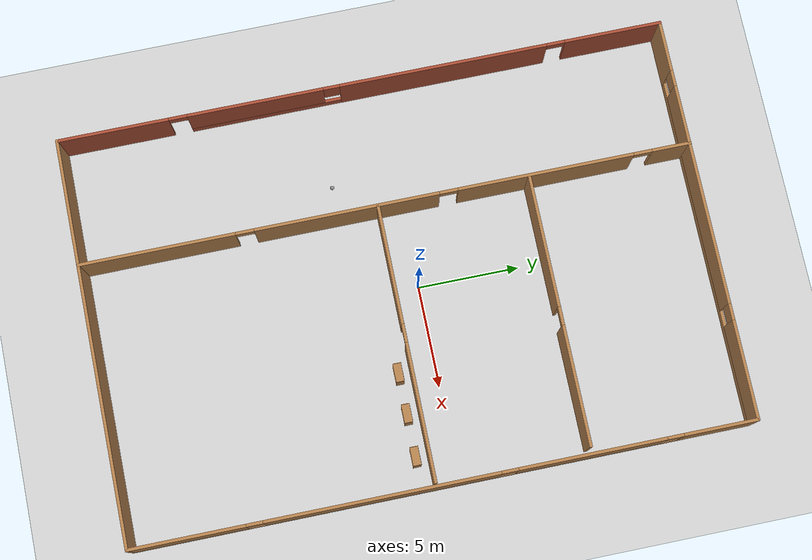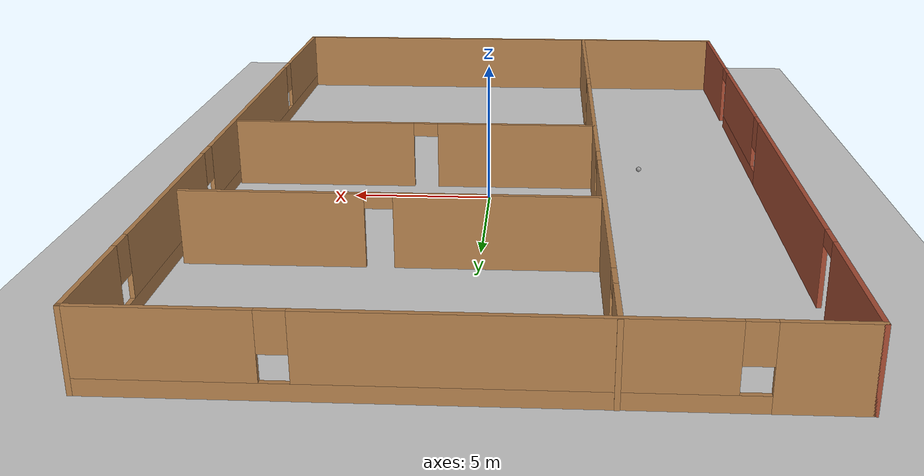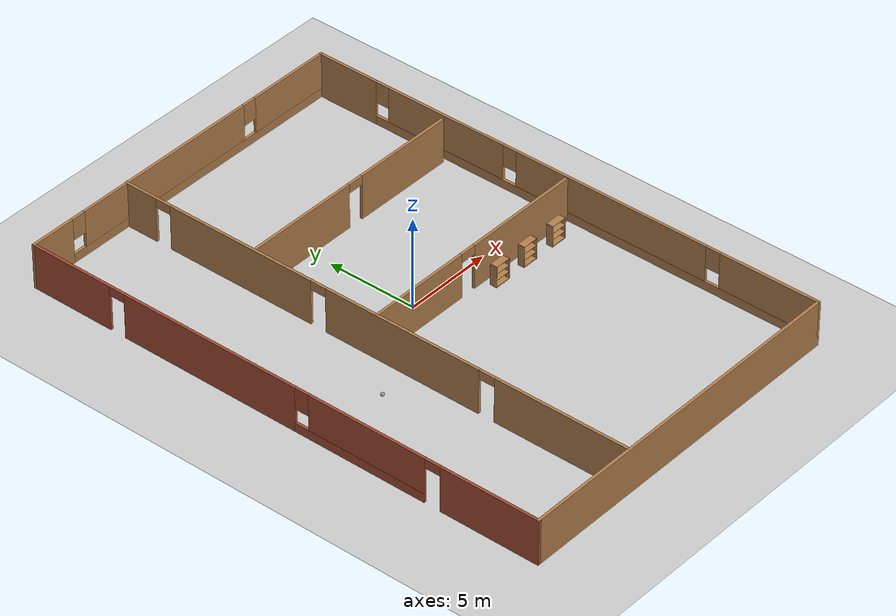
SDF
<sdf version="1.6">
 <world name="default">
  <plugin name="hello" filename="libhello.so"/>
  <light name="sun" type="directional">
   <pose>0 0 10 0 -0 0</pose>
   <diffuse>0.8 0.8 0.8 1</diffuse>
   <specular>0.2 0.2 0.2 1</specular>
   <attenuation>
    <range>1000</range>
    <constant>0.9</constant>
    <linear>0.01</linear>
    <quadratic>0.001</quadratic>
   </attenuation>
   <direction>-0.5 0.1 -0.9</direction>
  </light>
  <model name="ground_plane">
   <static>1</static>
   <link name="link">
    <collision name="collision">
     <geometry><plane><normal>0 0 1</normal><size>100 100</size></plane></geometry>
     <surface><friction><ode><mu>100</mu><mu2>50</mu2></ode></friction></surface>
    </collision>
    <visual name="visual">
     <cast_shadows>0</cast_shadows>
     <geometry><plane><normal>0 0 1</normal><size>100 100</size></plane></geometry>
     <material>
      <script><uri>file://media/materials/scripts/gazebo.material</uri><name>Gazebo/Grey</name></script>
     </material>
    </visual>
   </link>
  </model>
  <gravity>0 0 -9.8</gravity>
  <magnetic_field>6e-06 2.3e-05 -4.2e-05</magnetic_field>
  <atmosphere type="adiabatic"/>
  <physics name="default_physics" default="0" type="ode">
   <max_step_size>0.001</max_step_size>
   <real_time_factor>1</real_time_factor>
   <real_time_update_rate>1000</real_time_update_rate>
  </physics>
  <scene><ambient>0.4 0.4 0.4 1</ambient><background>0.7 0.7 0.7 1</background><shadows>1</shadows></scene>
  <spherical_coordinates>
   <surface_model>EARTH_WGS84</surface_model>
   <latitude_deg>0</latitude_deg>
   <longitude_deg>0</longitude_deg>
   <elevation>0</elevation>
   <heading_deg>0</heading_deg>
  </spherical_coordinates>
  <model name="mybuilding">
   <pose>-0.1778 -0.784294 0 0 -0 0</pose>
   <link name="Wall_10">
    <pose>-9.925 -0.008029 0 0 0 -1.5708</pose>
    <visual name="Wall_10_Visual_0">
     <pose>-12.5796 0 1.25 0 -0 0</pose>
     <geometry><box><size>4.84086 0.15 2.5</size></box></geometry>
     <material>
      <script><uri>file://media/materials/scripts/gazebo.material</uri><name>Gazebo/Bricks</name></script>
      <ambient>0 0 1 1</ambient>
     </material>
     <meta><layer>0</layer></meta>
    </visual>
    <collision name="Wall_10_Collision_0">
     <geometry><box><size>4.84086 0.15 2.5</size></box></geometry>
     <pose>-12.5796 0 1.25 0 -0 0</pose>
    </collision>
    <visual name="Wall_10_Visual_1">
     <pose>-4.10732 0 1.25 0 -0 0</pose>
     <geometry><box><size>10.3036 0.15 2.5</size></box></geometry>
     <material>
      <script><uri>file://media/materials/scripts/gazebo.material</uri><name>Gazebo/Bricks</name></script>
      <ambient>0 0 1 1</ambient>
     </material>
     <meta><layer>0</layer></meta>
    </visual>
    <collision name="Wall_10_Collision_1">
     <geometry><box><size>10.3036 0.15 2.5</size></box></geometry>
     <pose>-4.10732 0 1.25 0 -0 0</pose>
    </collision>
    <visual name="Wall_10_Visual_2">
     <pose>12.2327 0 1.25 0 -0 0</pose>
     <geometry><box><size>5.53454 0.15 2.5</size></box></geometry>
     <material>
      <script><uri>file://media/materials/scripts/gazebo.material</uri><name>Gazebo/Bricks</name></script>
      <ambient>0 0 1 1</ambient>
     </material>
     <meta><layer>0</layer></meta>
    </visual>
    <collision name="Wall_10_Collision_2">
     <geometry><box><size>5.53454 0.15 2.5</size></box></geometry>
     <pose>12.2327 0 1.25 0 -0 0</pose>
    </collision>
    <visual name="Wall_10_Visual_3">
     <pose>4.80498 0 0.25 0 -0 0</pose>
     <geometry><box><size>7.52096 0.15 0.5</size></box></geometry>
     <material>
      <script><uri>file://media/materials/scripts/gazebo.material</uri><name>Gazebo/Bricks</name></script>
      <ambient>0 0 1 1</ambient>
     </material>
     <meta><layer>0</layer></meta>
    </visual>
    <collision name="Wall_10_Collision_3">
     <geometry><box><size>7.52096 0.15 0.5</size></box></geometry>
     <pose>4.80498 0 0.25 0 -0 0</pose>
    </collision>
    <visual name="Wall_10_Visual_4">
     <pose>5.20498 0 1.5 0 -0 0</pose>
     <geometry><box><size>6.72096 0.15 2</size></box></geometry>
     <material>
      <script><uri>file://media/materials/scripts/gazebo.material</uri><name>Gazebo/Bricks</name></script>
      <ambient>0 0 1 1</ambient>
     </material>
     <meta><layer>0</layer></meta>
    </visual>
    <collision name="Wall_10_Collision_4">
     <geometry><box><size>6.72096 0.15 2</size></box></geometry>
     <pose>5.20498 0 1.5 0 -0 0</pose>
    </collision>
    <visual name="Wall_10_Visual_5">
     <pose>1.4445 0 1.9 0 -0 0</pose>
     <geometry><box><size>0.8 0.15 1.2</size></box></geometry>
     <material>
      <script><uri>file://media/materials/scripts/gazebo.material</uri><name>Gazebo/Bricks</name></script>
      <ambient>0 0 1 1</ambient>
     </material>
     <meta><layer>0</layer></meta>
    </visual>
    <collision name="Wall_10_Collision_5">
     <geometry><box><size>0.8 0.15 1.2</size></box></geometry>
     <pose>1.4445 0 1.9 0 -0 0</pose>
    </collision>
    <visual name="Wall_10_Visual_6">
     <pose>-9.70914 0 2.25 0 -0 0</pose>
     <geometry><box><size>0.9 0.15 0.5</size></box></geometry>
     <material>
      <script><uri>file://media/materials/scripts/gazebo.material</uri><name>Gazebo/Bricks</name></script>
      <ambient>0 0 1 1</ambient>
     </material>
     <meta><layer>0</layer></meta>
    </visual>
    <collision name="Wall_10_Collision_6">
     <geometry><box><size>0.9 0.15 0.5</size></box></geometry>
     <pose>-9.70914 0 2.25 0 -0 0</pose>
    </collision>
    <visual name="Wall_10_Visual_7">
     <pose>9.01545 0 2.25 0 -0 0</pose>
     <geometry><box><size>0.9 0.15 0.5</size></box></geometry>
     <material>
      <script><uri>file://media/materials/scripts/gazebo.material</uri><name>Gazebo/Bricks</name></script>
      <ambient>0 0 1 1</ambient>
     </material>
     <meta><layer>0</layer></meta>
    </visual>
    <collision name="Wall_10_Collision_7">
     <geometry><box><size>0.9 0.15 0.5</size></box></geometry>
     <pose>9.01545 0 2.25 0 -0 0</pose>
    </collision>
   </link>
   <link name="Wall_13">
    <pose>-3.70059 0.008029 0 0 0 -1.5708</pose>
    <visual name="Wall_13_Visual_0">
     <pose>-14.0243 0 1.25 0 -0 0</pose>
     <geometry><box><size>1.95137 0.15 2.5</size></box></geometry>
     <material>
      <script><uri>file://media/materials/scripts/gazebo.material</uri><name>Gazebo/Wood</name></script>
      <ambient>0 0 1 1</ambient>
     </material>
     <meta><layer>0</layer></meta>
    </visual>
    <collision name="Wall_13_Collision_0">
     <geometry><box><size>1.95137 0.15 2.5</size></box></geometry>
     <pose>-14.0243 0 1.25 0 -0 0</pose>
    </collision>
    <visual name="Wall_13_Visual_1">
     <pose>-7.82302 0 1.25 0 -0 0</pose>
     <geometry><box><size>8.65122 0.15 2.5</size></box></geometry>
     <material>
      <script><uri>file://media/materials/scripts/gazebo.material</uri><name>Gazebo/Wood</name></script>
      <ambient>0 0 1 1</ambient>
     </material>
     <meta><layer>0</layer></meta>
    </visual>
    <collision name="Wall_13_Collision_1">
     <geometry><box><size>8.65122 0.15 2.5</size></box></geometry>
     <pose>-7.82302 0 1.25 0 -0 0</pose>
    </collision>
    <visual name="Wall_13_Visual_2">
     <pose>1.92488 0 1.25 0 -0 0</pose>
     <geometry><box><size>9.04457 0.15 2.5</size></box></geometry>
     <material>
      <script><uri>file://media/materials/scripts/gazebo.material</uri><name>Gazebo/Wood</name></script>
      <ambient>0 0 1 1</ambient>
     </material>
     <meta><layer>0</layer></meta>
    </visual>
    <collision name="Wall_13_Collision_2">
     <geometry><box><size>9.04457 0.15 2.5</size></box></geometry>
     <pose>1.92488 0 1.25 0 -0 0</pose>
    </collision>
    <visual name="Wall_13_Visual_3">
     <pose>11.1736 0 1.25 0 -0 0</pose>
     <geometry><box><size>7.65284 0.15 2.5</size></box></geometry>
     <material>
      <script><uri>file://media/materials/scripts/gazebo.material</uri><name>Gazebo/Wood</name></script>
      <ambient>0 0 1 1</ambient>
     </material>
     <meta><layer>0</layer></meta>
    </visual>
    <collision name="Wall_13_Collision_3">
     <geometry><box><size>7.65284 0.15 2.5</size></box></geometry>
     <pose>11.1736 0 1.25 0 -0 0</pose>
    </collision>
    <visual name="Wall_13_Visual_4">
     <pose>-12.5986 0 2.25 0 -0 0</pose>
     <geometry><box><size>0.9 0.15 0.5</size></box></geometry>
     <material>
      <script><uri>file://media/materials/scripts/gazebo.material</uri><name>Gazebo/Wood</name></script>
      <ambient>0 0 1 1</ambient>
     </material>
     <meta><layer>0</layer></meta>
    </visual>
    <collision name="Wall_13_Collision_4">
     <geometry><box><size>0.9 0.15 0.5</size></box></geometry>
     <pose>-12.5986 0 2.25 0 -0 0</pose>
    </collision>
    <visual name="Wall_13_Visual_5">
     <pose>-3.0474 0 2.25 0 -0 0</pose>
     <geometry><box><size>0.9 0.15 0.5</size></box></geometry>
     <material>
      <script><uri>file://media/materials/scripts/gazebo.material</uri><name>Gazebo/Wood</name></script>
      <ambient>0 0 1 1</ambient>
     </material>
     <meta><layer>0</layer></meta>
    </visual>
    <collision name="Wall_13_Collision_5">
     <geometry><box><size>0.9 0.15 0.5</size></box></geometry>
     <pose>-3.0474 0 2.25 0 -0 0</pose>
    </collision>
    <visual name="Wall_13_Visual_6">
     <pose>6.89716 0 2.25 0 -0 0</pose>
     <geometry><box><size>0.9 0.15 0.5</size></box></geometry>
     <material>
      <script><uri>file://media/materials/scripts/gazebo.material</uri><name>Gazebo/Wood</name></script>
      <ambient>0 0 1 1</ambient>
     </material>
     <meta><layer>0</layer></meta>
    </visual>
    <collision name="Wall_13_Collision_6">
     <geometry><box><size>0.9 0.15 0.5</size></box></geometry>
     <pose>6.89716 0 2.25 0 -0 0</pose>
    </collision>
   </link>
   <link name="Wall_15">
    <pose>3.05016 -0.404863 0 0 -0 0</pose>
    <visual name="Wall_15_Visual_0">
     <pose>-3.81442 0 1.25 0 -0 0</pose>
     <geometry><box><size>5.87116 0.15 2.5</size></box></geometry>
     <material>
      <script><uri>file://media/materials/scripts/gazebo.material</uri><name>Gazebo/Wood</name></script>
      <ambient>0 0 1 1</ambient>
     </material>
     <meta><layer>0</layer></meta>
    </visual>
    <collision name="Wall_15_Collision_0">
     <geometry><box><size>5.87116 0.15 2.5</size></box></geometry>
     <pose>-3.81442 0 1.25 0 -0 0</pose>
    </collision>
    <visual name="Wall_15_Visual_1">
     <pose>3.38558 0 1.25 0 -0 0</pose>
     <geometry><box><size>6.72884 0.15 2.5</size></box></geometry>
     <material>
      <script><uri>file://media/materials/scripts/gazebo.material</uri><name>Gazebo/Wood</name></script>
      <ambient>0 0 1 1</ambient>
     </material>
     <meta><layer>0</layer></meta>
    </visual>
    <collision name="Wall_15_Collision_1">
     <geometry><box><size>6.72884 0.15 2.5</size></box></geometry>
     <pose>3.38558 0 1.25 0 -0 0</pose>
    </collision>
    <visual name="Wall_15_Visual_2">
     <pose>-0.428837 0 2.25 0 -0 0</pose>
     <geometry><box><size>0.9 0.15 0.5</size></box></geometry>
     <material>
      <script><uri>file://media/materials/scripts/gazebo.material</uri><name>Gazebo/Wood</name></script>
      <ambient>0 0 1 1</ambient>
     </material>
     <meta><layer>0</layer></meta>
    </visual>
    <collision name="Wall_15_Collision_2">
     <geometry><box><size>0.9 0.15 0.5</size></box></geometry>
     <pose>-0.428837 0 2.25 0 -0 0</pose>
    </collision>
   </link>
   <link name="Wall_17">
    <pose>2.99934 7.00164 0 0 -0 0</pose>
    <visual name="Wall_17_Visual_0">
     <pose>-3.38982 0 1.25 0 -0 0</pose>
     <geometry><box><size>6.47037 0.15 2.5</size></box></geometry>
     <material>
      <script><uri>file://media/materials/scripts/gazebo.material</uri><name>Gazebo/Wood</name></script>
      <ambient>0 0 1 1</ambient>
     </material>
     <meta><layer>0</layer></meta>
    </visual>
    <collision name="Wall_17_Collision_0">
     <geometry><box><size>6.47037 0.15 2.5</size></box></geometry>
     <pose>-3.38982 0 1.25 0 -0 0</pose>
    </collision>
    <visual name="Wall_17_Visual_1">
     <pose>3.68518 0 1.25 0 -0 0</pose>
     <geometry><box><size>5.87964 0.15 2.5</size></box></geometry>
     <material>
      <script><uri>file://media/materials/scripts/gazebo.material</uri><name>Gazebo/Wood</name></script>
      <ambient>0 0 1 1</ambient>
     </material>
     <meta><layer>0</layer></meta>
    </visual>
    <collision name="Wall_17_Collision_1">
     <geometry><box><size>5.87964 0.15 2.5</size></box></geometry>
     <pose>3.68518 0 1.25 0 -0 0</pose>
    </collision>
    <visual name="Wall_17_Visual_2">
     <pose>0.295365 0 2.25 0 -0 0</pose>
     <geometry><box><size>0.9 0.15 0.5</size></box></geometry>
     <material>
      <script><uri>file://media/materials/scripts/gazebo.material</uri><name>Gazebo/Wood</name></script>
      <ambient>0 0 1 1</ambient>
     </material>
     <meta><layer>0</layer></meta>
    </visual>
    <collision name="Wall_17_Collision_2">
     <geometry><box><size>0.9 0.15 0.5</size></box></geometry>
     <pose>0.295365 0 2.25 0 -0 0</pose>
    </collision>
   </link>
   <link name="Wall_2">
    <pose>0 14.917 0 0 -0 0</pose>
    <visual name="Wall_2_Visual_0">
     <pose>-8.71655 0 1.25 0 -0 0</pose>
     <geometry><box><size>2.56689 0.15 2.5</size></box></geometry>
     <material>
      <script><uri>file://media/materials/scripts/gazebo.material</uri><name>Gazebo/Wood</name></script>
      <ambient>0 0 1 1</ambient>
     </material>
     <meta><layer>0</layer></meta>
    </visual>
    <collision name="Wall_2_Collision_0">
     <geometry><box><size>2.56689 0.15 2.5</size></box></geometry>
     <pose>-8.71655 0 1.25 0 -0 0</pose>
    </collision>
    <visual name="Wall_2_Visual_1">
     <pose>1.28344 0 0.25 0 -0 0</pose>
     <geometry><box><size>17.4331 0.15 0.5</size></box></geometry>
     <material>
      <script><uri>file://media/materials/scripts/gazebo.material</uri><name>Gazebo/Wood</name></script>
      <ambient>0 0 1 1</ambient>
     </material>
     <meta><layer>0</layer></meta>
    </visual>
    <collision name="Wall_2_Collision_1">
     <geometry><box><size>17.4331 0.15 0.5</size></box></geometry>
     <pose>1.28344 0 0.25 0 -0 0</pose>
    </collision>
    <visual name="Wall_2_Visual_2">
     <pose>-1.15311 0 1.5 0 -0 0</pose>
     <geometry><box><size>10.96 0.15 2</size></box></geometry>
     <material>
      <script><uri>file://media/materials/scripts/gazebo.material</uri><name>Gazebo/Wood</name></script>
      <ambient>0 0 1 1</ambient>
     </material>
     <meta><layer>0</layer></meta>
    </visual>
    <collision name="Wall_2_Collision_2">
     <geometry><box><size>10.96 0.15 2</size></box></geometry>
     <pose>-1.15311 0 1.5 0 -0 0</pose>
    </collision>
    <visual name="Wall_2_Visual_3">
     <pose>7.56344 0 1.5 0 -0 0</pose>
     <geometry><box><size>4.87311 0.15 2</size></box></geometry>
     <material>
      <script><uri>file://media/materials/scripts/gazebo.material</uri><name>Gazebo/Wood</name></script>
      <ambient>0 0 1 1</ambient>
     </material>
     <meta><layer>0</layer></meta>
    </visual>
    <collision name="Wall_2_Collision_3">
     <geometry><box><size>4.87311 0.15 2</size></box></geometry>
     <pose>7.56344 0 1.5 0 -0 0</pose>
    </collision>
    <visual name="Wall_2_Visual_4">
     <pose>-7.03311 0 1.9 0 -0 0</pose>
     <geometry><box><size>0.8 0.15 1.2</size></box></geometry>
     <material>
      <script><uri>file://media/materials/scripts/gazebo.material</uri><name>Gazebo/Wood</name></script>
      <ambient>0 0 1 1</ambient>
     </material>
     <meta><layer>0</layer></meta>
    </visual>
    <collision name="Wall_2_Collision_4">
     <geometry><box><size>0.8 0.15 1.2</size></box></geometry>
     <pose>-7.03311 0 1.9 0 -0 0</pose>
    </collision>
    <visual name="Wall_2_Visual_5">
     <pose>4.72689 0 1.9 0 -0 0</pose>
     <geometry><box><size>0.8 0.15 1.2</size></box></geometry>
     <material>
      <script><uri>file://media/materials/scripts/gazebo.material</uri><name>Gazebo/Wood</name></script>
      <ambient>0 0 1 1</ambient>
     </material>
     <meta><layer>0</layer></meta>
    </visual>
    <collision name="Wall_2_Collision_5">
     <geometry><box><size>0.8 0.15 1.2</size></box></geometry>
     <pose>4.72689 0 1.9 0 -0 0</pose>
    </collision>
   </link>
   <link name="Wall_3">
    <pose>9.925 -0.008029 0 0 0 -1.5708</pose>
    <visual name="Wall_3_Visual_0">
     <pose>-13.1903 0 1.25 0 -0 0</pose>
     <geometry><box><size>3.61947 0.15 2.5</size></box></geometry>
     <material>
      <script><uri>file://media/materials/scripts/gazebo.material</uri><name>Gazebo/Wood</name></script>
      <ambient>0 0 1 1</ambient>
     </material>
     <meta><layer>0</layer></meta>
    </visual>
    <collision name="Wall_3_Collision_0">
     <geometry><box><size>3.61947 0.15 2.5</size></box></geometry>
     <pose>-13.1903 0 1.25 0 -0 0</pose>
    </collision>
    <visual name="Wall_3_Visual_1">
     <pose>1.80973 0 0.25 0 -0 0</pose>
     <geometry><box><size>26.3805 0.15 0.5</size></box></geometry>
     <material>
      <script><uri>file://media/materials/scripts/gazebo.material</uri><name>Gazebo/Wood</name></script>
      <ambient>0 0 1 1</ambient>
     </material>
     <meta><layer>0</layer></meta>
    </visual>
    <collision name="Wall_3_Collision_1">
     <geometry><box><size>26.3805 0.15 0.5</size></box></geometry>
     <pose>1.80973 0 0.25 0 -0 0</pose>
    </collision>
    <visual name="Wall_3_Visual_2">
     <pose>-7.03827 0 1.5 0 -0 0</pose>
     <geometry><box><size>7.08452 0.15 2</size></box></geometry>
     <material>
      <script><uri>file://media/materials/scripts/gazebo.material</uri><name>Gazebo/Wood</name></script>
      <ambient>0 0 1 1</ambient>
     </material>
     <meta><layer>0</layer></meta>
    </visual>
    <collision name="Wall_3_Collision_2">
     <geometry><box><size>7.08452 0.15 2</size></box></geometry>
     <pose>-7.03827 0 1.5 0 -0 0</pose>
    </collision>
    <visual name="Wall_3_Visual_3">
     <pose>2.93288 0 1.5 0 -0 0</pose>
     <geometry><box><size>11.2578 0.15 2</size></box></geometry>
     <material>
      <script><uri>file://media/materials/scripts/gazebo.material</uri><name>Gazebo/Wood</name></script>
      <ambient>0 0 1 1</ambient>
     </material>
     <meta><layer>0</layer></meta>
    </visual>
    <collision name="Wall_3_Collision_3">
     <geometry><box><size>11.2578 0.15 2</size></box></geometry>
     <pose>2.93288 0 1.5 0 -0 0</pose>
    </collision>
    <visual name="Wall_3_Visual_4">
     <pose>12.1809 0 1.5 0 -0 0</pose>
     <geometry><box><size>5.63822 0.15 2</size></box></geometry>
     <material>
      <script><uri>file://media/materials/scripts/gazebo.material</uri><name>Gazebo/Wood</name></script>
      <ambient>0 0 1 1</ambient>
     </material>
     <meta><layer>0</layer></meta>
    </visual>
    <collision name="Wall_3_Collision_4">
     <geometry><box><size>5.63822 0.15 2</size></box></geometry>
     <pose>12.1809 0 1.5 0 -0 0</pose>
    </collision>
    <visual name="Wall_3_Visual_5">
     <pose>-10.9805 0 1.9 0 -0 0</pose>
     <geometry><box><size>0.8 0.15 1.2</size></box></geometry>
     <material>
      <script><uri>file://media/materials/scripts/gazebo.material</uri><name>Gazebo/Wood</name></script>
      <ambient>0 0 1 1</ambient>
     </material>
     <meta><layer>0</layer></meta>
    </visual>
    <collision name="Wall_3_Collision_5">
     <geometry><box><size>0.8 0.15 1.2</size></box></geometry>
     <pose>-10.9805 0 1.9 0 -0 0</pose>
    </collision>
    <visual name="Wall_3_Visual_6">
     <pose>-3.09601 0 1.9 0 -0 0</pose>
     <geometry><box><size>0.8 0.15 1.2</size></box></geometry>
     <material>
      <script><uri>file://media/materials/scripts/gazebo.material</uri><name>Gazebo/Wood</name></script>
      <ambient>0 0 1 1</ambient>
     </material>
     <meta><layer>0</layer></meta>
    </visual>
    <collision name="Wall_3_Collision_6">
     <geometry><box><size>0.8 0.15 1.2</size></box></geometry>
     <pose>-3.09601 0 1.9 0 -0 0</pose>
    </collision>
    <visual name="Wall_3_Visual_7">
     <pose>8.96178 0 1.9 0 -0 0</pose>
     <geometry><box><size>0.8 0.15 1.2</size></box></geometry>
     <material>
      <script><uri>file://media/materials/scripts/gazebo.material</uri><name>Gazebo/Wood</name></script>
      <ambient>0 0 1 1</ambient>
     </material>
     <meta><layer>0</layer></meta>
    </visual>
    <collision name="Wall_3_Collision_7">
     <geometry><box><size>0.8 0.15 1.2</size></box></geometry>
     <pose>8.96178 0 1.9 0 -0 0</pose>
    </collision>
   </link>
   <link name="Wall_5">
    <collision name="Wall_5_Collision">
     <geometry><box><size>20 0.15 2.5</size></box></geometry>
     <pose>0 0 1.25 0 -0 0</pose>
    </collision>
    <visual name="Wall_5_Visual">
     <pose>0 0 1.25 0 -0 0</pose>
     <geometry><box><size>20 0.15 2.5</size></box></geometry>
     <material>
      <script><uri>file://media/materials/scripts/gazebo.material</uri><name>Gazebo/Wood</name></script>
      <ambient>0 0 1 1</ambient>
     </material>
     <meta><layer>0</layer></meta>
    </visual>
    <pose>0 -14.933 0 0 -0 3.14159</pose>
   </link>
   <static>1</static>
  </model>
  <model name="bookshelf">
   <static>1</static>
   <link name="link">
    <inertial><mass>1</mass></inertial>
    <collision name="back">
     <pose>0 0.005 0.6 0 -0 0</pose>
     <geometry><box><size>0.9 0.01 1.2</size></box></geometry>
    </collision>
    <visual name="visual1">
     <pose>0 0.005 0.6 0 -0 0</pose>
     <geometry><box><size>0.9 0.01 1.2</size></box></geometry>
     <material>
      <script><uri>file://media/materials/scripts/gazebo.material</uri><name>Gazebo/Wood</name></script>
     </material>
    </visual>
    <collision name="left_side">
     <pose>0.45 -0.195 0.6 0 -0 0</pose>
     <geometry><box><size>0.02 0.4 1.2</size></box></geometry>
    </collision>
    <visual name="visual2">
     <pose>0.45 -0.195 0.6 0 -0 0</pose>
     <geometry><box><size>0.02 0.4 1.2</size></box></geometry>
     <material>
      <script><uri>file://media/materials/scripts/gazebo.material</uri><name>Gazebo/Wood</name></script>
     </material>
    </visual>
    <collision name="right_side">
     <pose>-0.45 -0.195 0.6 0 -0 0</pose>
     <geometry><box><size>0.02 0.4 1.2</size></box></geometry>
    </collision>
    <visual name="visual3">
     <pose>-0.45 -0.195 0.6 0 -0 0</pose>
     <geometry><box><size>0.02 0.4 1.2</size></box></geometry>
     <material>
      <script><uri>file://media/materials/scripts/gazebo.material</uri><name>Gazebo/Wood</name></script>
     </material>
    </visual>
    <collision name="bottom">
     <pose>0 -0.195 0.03 0 -0 0</pose>
     <geometry><box><size>0.88 0.4 0.06</size></box></geometry>
    </collision>
    <visual name="visual4">
     <pose>0 -0.195 0.03 0 -0 0</pose>
     <geometry><box><size>0.88 0.4 0.06</size></box></geometry>
     <material>
      <script><uri>file://media/materials/scripts/gazebo.material</uri><name>Gazebo/Wood</name></script>
     </material>
    </visual>
    <collision name="top">
     <pose>0 -0.195 1.19 0 -0 0</pose>
     <geometry><box><size>0.88 0.4 0.02</size></box></geometry>
    </collision>
    <visual name="visual5">
     <pose>0 -0.195 1.19 0 -0 0</pose>
     <geometry><box><size>0.88 0.4 0.02</size></box></geometry>
     <material>
      <script><uri>file://media/materials/scripts/gazebo.material</uri><name>Gazebo/Wood</name></script>
     </material>
    </visual>
    <collision name="low_shelf">
     <pose>0 -0.195 0.43 0 -0 0</pose>
     <geometry><box><size>0.88 0.4 0.02</size></box></geometry>
    </collision>
    <visual name="visual6">
     <pose>0 -0.195 0.43 0 -0 0</pose>
     <geometry><box><size>0.88 0.4 0.02</size></box></geometry>
     <material>
      <script><uri>file://media/materials/scripts/gazebo.material</uri><name>Gazebo/Wood</name></script>
     </material>
    </visual>
    <collision name="high_shelf">
     <pose>0 -0.195 0.8 0 -0 0</pose>
     <geometry><box><size>0.88 0.4 0.02</size></box></geometry>
    </collision>
    <visual name="visual7">
     <pose>0 -0.195 0.8 0 -0 0</pose>
     <geometry><box><size>0.88 0.4 0.02</size></box></geometry>
     <material>
      <script><uri>file://media/materials/scripts/gazebo.material</uri><name>Gazebo/Wood</name></script>
     </material>
    </visual>
   </link>
   <pose>8.09961 -1.63168 0 0 -0 0</pose>
  </model>
  <model name="bookshelf_0">
   <static>1</static>
   <link name="link">
    <inertial><mass>1</mass></inertial>
    <collision name="back">
     <pose>0 0.005 0.6 0 -0 0</pose>
     <geometry><box><size>0.9 0.01 1.2</size></box></geometry>
    </collision>
    <visual name="visual1">
     <pose>0 0.005 0.6 0 -0 0</pose>
     <geometry><box><size>0.9 0.01 1.2</size></box></geometry>
     <material>
      <script><uri>file://media/materials/scripts/gazebo.material</uri><name>Gazebo/Wood</name></script>
     </material>
    </visual>
    <collision name="left_side">
     <pose>0.45 -0.195 0.6 0 -0 0</pose>
     <geometry><box><size>0.02 0.4 1.2</size></box></geometry>
    </collision>
    <visual name="visual2">
     <pose>0.45 -0.195 0.6 0 -0 0</pose>
     <geometry><box><size>0.02 0.4 1.2</size></box></geometry>
     <material>
      <script><uri>file://media/materials/scripts/gazebo.material</uri><name>Gazebo/Wood</name></script>
     </material>
    </visual>
    <collision name="right_side">
     <pose>-0.45 -0.195 0.6 0 -0 0</pose>
     <geometry><box><size>0.02 0.4 1.2</size></box></geometry>
    </collision>
    <visual name="visual3">
     <pose>-0.45 -0.195 0.6 0 -0 0</pose>
     <geometry><box><size>0.02 0.4 1.2</size></box></geometry>
     <material>
      <script><uri>file://media/materials/scripts/gazebo.material</uri><name>Gazebo/Wood</name></script>
     </material>
    </visual>
    <collision name="bottom">
     <pose>0 -0.195 0.03 0 -0 0</pose>
     <geometry><box><size>0.88 0.4 0.06</size></box></geometry>
    </collision>
    <visual name="visual4">
     <pose>0 -0.195 0.03 0 -0 0</pose>
     <geometry><box><size>0.88 0.4 0.06</size></box></geometry>
     <material>
      <script><uri>file://media/materials/scripts/gazebo.material</uri><name>Gazebo/Wood</name></script>
     </material>
    </visual>
    <collision name="top">
     <pose>0 -0.195 1.19 0 -0 0</pose>
     <geometry><box><size>0.88 0.4 0.02</size></box></geometry>
    </collision>
    <visual name="visual5">
     <pose>0 -0.195 1.19 0 -0 0</pose>
     <geometry><box><size>0.88 0.4 0.02</size></box></geometry>
     <material>
      <script><uri>file://media/materials/scripts/gazebo.material</uri><name>Gazebo/Wood</name></script>
     </material>
    </visual>
    <collision name="low_shelf">
     <pose>0 -0.195 0.43 0 -0 0</pose>
     <geometry><box><size>0.88 0.4 0.02</size></box></geometry>
    </collision>
    <visual name="visual6">
     <pose>0 -0.195 0.43 0 -0 0</pose>
     <geometry><box><size>0.88 0.4 0.02</size></box></geometry>
     <material>
      <script><uri>file://media/materials/scripts/gazebo.material</uri><name>Gazebo/Wood</name></script>
     </material>
    </visual>
    <collision name="high_shelf">
     <pose>0 -0.195 0.8 0 -0 0</pose>
     <geometry><box><size>0.88 0.4 0.02</size></box></geometry>
    </collision>
    <visual name="visual7">
     <pose>0 -0.195 0.8 0 -0 0</pose>
     <geometry><box><size>0.88 0.4 0.02</size></box></geometry>
     <material>
      <script><uri>file://media/materials/scripts/gazebo.material</uri><name>Gazebo/Wood</name></script>
     </material>
    </visual>
   </link>
   <pose>6.03314 -1.6192 0 0 -0 0</pose>
  </model>
  <model name="bookshelf_1">
   <static>1</static>
   <link name="link">
    <inertial><mass>1</mass></inertial>
    <collision name="back">
     <pose>0 0.005 0.6 0 -0 0</pose>
     <geometry><box><size>0.9 0.01 1.2</size></box></geometry>
    </collision>
    <visual name="visual1">
     <pose>0 0.005 0.6 0 -0 0</pose>
     <geometry><box><size>0.9 0.01 1.2</size></box></geometry>
     <material>
      <script><uri>file://media/materials/scripts/gazebo.material</uri><name>Gazebo/Wood</name></script>
     </material>
    </visual>
    <collision name="left_side">
     <pose>0.45 -0.195 0.6 0 -0 0</pose>
     <geometry><box><size>0.02 0.4 1.2</size></box></geometry>
    </collision>
    <visual name="visual2">
     <pose>0.45 -0.195 0.6 0 -0 0</pose>
     <geometry><box><size>0.02 0.4 1.2</size></box></geometry>
     <material>
      <script><uri>file://media/materials/scripts/gazebo.material</uri><name>Gazebo/Wood</name></script>
     </material>
    </visual>
    <collision name="right_side">
     <pose>-0.45 -0.195 0.6 0 -0 0</pose>
     <geometry><box><size>0.02 0.4 1.2</size></box></geometry>
    </collision>
    <visual name="visual3">
     <pose>-0.45 -0.195 0.6 0 -0 0</pose>
     <geometry><box><size>0.02 0.4 1.2</size></box></geometry>
     <material>
      <script><uri>file://media/materials/scripts/gazebo.material</uri><name>Gazebo/Wood</name></script>
     </material>
    </visual>
    <collision name="bottom">
     <pose>0 -0.195 0.03 0 -0 0</pose>
     <geometry><box><size>0.88 0.4 0.06</size></box></geometry>
    </collision>
    <visual name="visual4">
     <pose>0 -0.195 0.03 0 -0 0</pose>
     <geometry><box><size>0.88 0.4 0.06</size></box></geometry>
     <material>
      <script><uri>file://media/materials/scripts/gazebo.material</uri><name>Gazebo/Wood</name></script>
     </material>
    </visual>
    <collision name="top">
     <pose>0 -0.195 1.19 0 -0 0</pose>
     <geometry><box><size>0.88 0.4 0.02</size></box></geometry>
    </collision>
    <visual name="visual5">
     <pose>0 -0.195 1.19 0 -0 0</pose>
     <geometry><box><size>0.88 0.4 0.02</size></box></geometry>
     <material>
      <script><uri>file://media/materials/scripts/gazebo.material</uri><name>Gazebo/Wood</name></script>
     </material>
    </visual>
    <collision name="low_shelf">
     <pose>0 -0.195 0.43 0 -0 0</pose>
     <geometry><box><size>0.88 0.4 0.02</size></box></geometry>
    </collision>
    <visual name="visual6">
     <pose>0 -0.195 0.43 0 -0 0</pose>
     <geometry><box><size>0.88 0.4 0.02</size></box></geometry>
     <material>
      <script><uri>file://media/materials/scripts/gazebo.material</uri><name>Gazebo/Wood</name></script>
     </material>
    </visual>
    <collision name="high_shelf">
     <pose>0 -0.195 0.8 0 -0 0</pose>
     <geometry><box><size>0.88 0.4 0.02</size></box></geometry>
    </collision>
    <visual name="visual7">
     <pose>0 -0.195 0.8 0 -0 0</pose>
     <geometry><box><size>0.88 0.4 0.02</size></box></geometry>
     <material>
      <script><uri>file://media/materials/scripts/gazebo.material</uri><name>Gazebo/Wood</name></script>
     </material>
    </visual>
   </link>
   <pose>4.04549 -1.61943 0 0 -0 0</pose>
  </model>
  <model name="my_ball">
   <link name="link_0">
    <inertial>
     <mass>1</mass>
     <inertia><ixx>0.1</ixx><ixy>0</ixy><ixz>0</ixz><iyy>0.1</iyy><iyz>0</iyz><izz>0.1</izz></inertia>
    </inertial>
    <visual name="visual">
     <geometry><sphere><radius>0.1</radius></sphere></geometry>
     <material>
      <lighting>1</lighting>
      <script><uri>file://media/materials/scripts/gazebo.material</uri><name>Gazebo/Grey</name></script>
      <shader type="pixel"><normal_map>__default__</normal_map></shader>
      <ambient>1 1 1 1</ambient>
      <diffuse>1 1 1 1</diffuse>
      <specular>1 1 1 1</specular>
      <emissive>1 1 1 1</emissive>
     </material>
    </visual>
    <collision name="collision">
     <geometry><sphere><radius>0.1</radius></sphere></geometry>
     <surface>
      <friction>
       <ode><mu>1</mu><mu2>1</mu2><fdir1>0 0 0</fdir1><slip1>0</slip1><slip2>0</slip2></ode>
       <torsional>
        <coefficient>1</coefficient>
        <patch_radius>0</patch_radius>
        <surface_radius>0</surface_radius>
        <use_patch_radius>1</use_patch_radius>
        <ode><slip>0</slip></ode>
       </torsional>
      </friction>
      <bounce><restitution_coefficient>0</restitution_coefficient><threshold>1e+06</threshold></bounce>
      <contact>
       <collide_without_contact>0</collide_without_contact>
       <collide_without_contact_bitmask>1</collide_without_contact_bitmask>
       <collide_bitmask>1</collide_bitmask>
       <ode>
        <soft_cfm>0</soft_cfm>
        <soft_erp>0.2</soft_erp>
        <kp>1e+13</kp>
        <kd>1</kd>
        <max_vel>0.01</max_vel>
        <min_depth>0</min_depth>
       </ode>
       <bullet>
        <split_impulse>1</split_impulse>
        <split_impulse_penetration_threshold>-0.01</split_impulse_penetration_threshold>
        <soft_cfm>0</soft_cfm>
        <soft_erp>0.2</soft_erp>
        <kp>1e+13</kp>
        <kd>1</kd>
       </bullet>
      </contact>
     </surface>
    </collision>
   </link>
   <static>0</static>
   <pose>-5.77016 -3.14808 0.1 0 -0 0</pose>
  </model>
  <audio><device>default</device></audio>
 </world>
</sdf>
